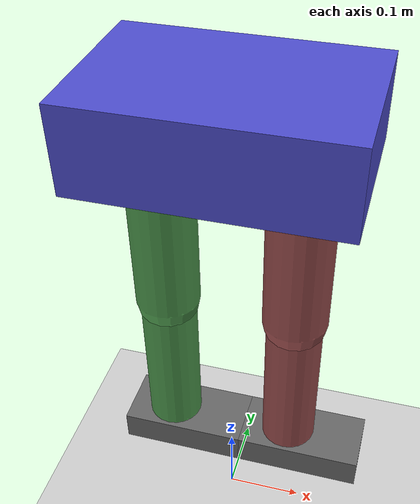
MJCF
<mujoco model="biped_legs">
  <compiler angle="degree" coordinate="local"/>

  <option timestep="0.002" gravity="0 0 -9.81"/>

  <default>
    <joint damping="0.5" armature="0.01"/>
    <geom contype="1" conaffinity="1" friction="1 0.5 0.5"/>
    <motor ctrllimited="true" ctrlrange="-1 1"/>
  </default>

  <worldbody>
    <!-- Ground plane -->
    <geom name="floor" type="plane" size="10 10 0.1" rgba="0.8 0.8 0.8 1"/>

    <!-- Torso (pelvis) - floating base -->
    <body name="torso" pos="0 0 0.6">
      <freejoint name="root"/>
      <geom name="pelvis" type="box" size="0.15 0.1 0.05" rgba="0.3 0.3 0.8 1" mass="5"/>
      <site name="torso_site" pos="0 0 0"/>

      <!-- RIGHT LEG -->
      <body name="right_hip" pos="0.08 0 -0.05">
        <!-- Servo 4: Hip roll (out/in) -->
        <joint name="right_hip_roll" type="hinge" axis="1 0 0" range="-30 30"/>
        <geom name="right_hip_geom" type="sphere" size="0.03" rgba="0.5 0.5 0.5 1"/>

        <body name="right_thigh" pos="0 0 0">
          <!-- Servo 5: Hip pitch (fwd/back) -->
          <joint name="right_hip_pitch" type="hinge" axis="0 1 0" range="-60 60"/>
          <geom name="right_thigh_geom" type="capsule" fromto="0 0 0 0 0 -0.2" size="0.04" rgba="0.6 0.3 0.3 1" mass="1.5"/>

          <body name="right_shin" pos="0 0 -0.2">
            <!-- Servo 6: Knee (fwd/back) -->
            <joint name="right_knee" type="hinge" axis="0 1 0" range="-5 120"/>
            <geom name="right_shin_geom" type="capsule" fromto="0 0 0 0 0 -0.2" size="0.035" rgba="0.6 0.3 0.3 1" mass="1"/>

            <body name="right_foot" pos="0 0 -0.2">
              <!-- Servo 7: Ankle roll (out/in) -->
              <joint name="right_ankle_roll" type="hinge" axis="1 0 0" range="-30 30"/>
              <geom name="right_foot_geom" type="box" size="0.08 0.04 0.02" pos="0.02 0 -0.02" rgba="0.4 0.4 0.4 1" mass="0.5"/>
              <site name="right_foot_site" pos="0 0 -0.02"/>
            </body>
          </body>
        </body>
      </body>

      <!-- LEFT LEG -->
      <body name="left_hip" pos="-0.08 0 -0.05">
        <!-- Servo 15: Hip roll (out/in) -->
        <joint name="left_hip_roll" type="hinge" axis="1 0 0" range="-30 30"/>
        <geom name="left_hip_geom" type="sphere" size="0.03" rgba="0.5 0.5 0.5 1"/>

        <body name="left_thigh" pos="0 0 0">
          <!-- Servo 16: Hip pitch (fwd/back) -->
          <joint name="left_hip_pitch" type="hinge" axis="0 1 0" range="-60 60"/>
          <geom name="left_thigh_geom" type="capsule" fromto="0 0 0 0 0 -0.2" size="0.04" rgba="0.3 0.6 0.3 1" mass="1.5"/>

          <body name="left_shin" pos="0 0 -0.2">
            <!-- Servo 17: Knee (fwd/back) -->
            <joint name="left_knee" type="hinge" axis="0 1 0" range="-5 120"/>
            <geom name="left_shin_geom" type="capsule" fromto="0 0 0 0 0 -0.2" size="0.035" rgba="0.3 0.6 0.3 1" mass="1"/>

            <body name="left_foot" pos="0 0 -0.2">
              <!-- Servo 18: Ankle roll (out/in) -->
              <joint name="left_ankle_roll" type="hinge" axis="1 0 0" range="-30 30"/>
              <geom name="left_foot_geom" type="box" size="0.08 0.04 0.02" pos="0.02 0 -0.02" rgba="0.4 0.4 0.4 1" mass="0.5"/>
              <site name="left_foot_site" pos="0 0 -0.02"/>
            </body>
          </body>
        </body>
      </body>
    </body>
  </worldbody>

  <actuator>
    <!-- Right leg actuators (servos 4, 5, 6, 7) -->
    <motor name="right_hip_roll_motor" joint="right_hip_roll" gear="50"/>
    <motor name="right_hip_pitch_motor" joint="right_hip_pitch" gear="50"/>
    <motor name="right_knee_motor" joint="right_knee" gear="50"/>
    <motor name="right_ankle_roll_motor" joint="right_ankle_roll" gear="30"/>

    <!-- Left leg actuators (servos 15, 16, 17, 18) -->
    <motor name="left_hip_roll_motor" joint="left_hip_roll" gear="50"/>
    <motor name="left_hip_pitch_motor" joint="left_hip_pitch" gear="50"/>
    <motor name="left_knee_motor" joint="left_knee" gear="50"/>
    <motor name="left_ankle_roll_motor" joint="left_ankle_roll" gear="30"/>
  </actuator>

</mujoco>
